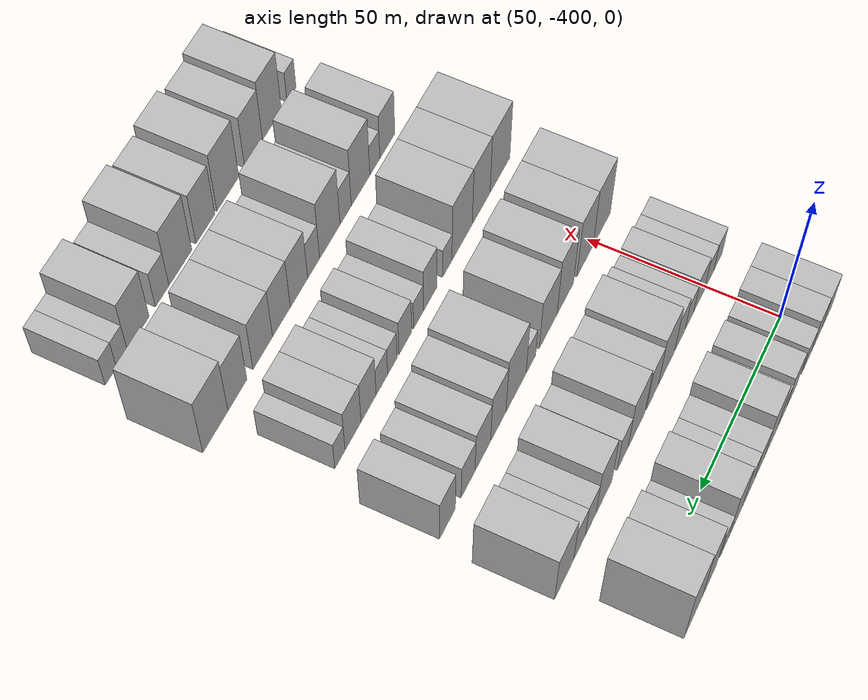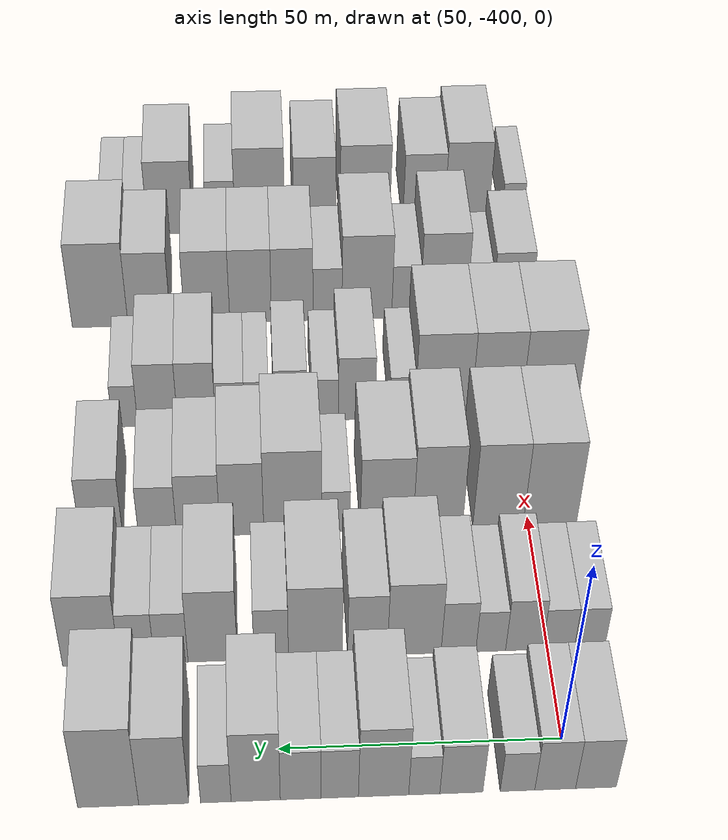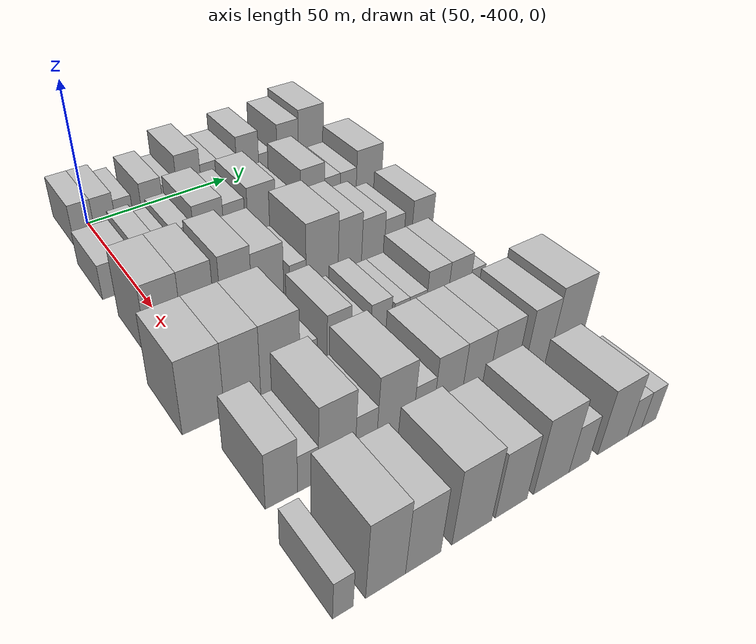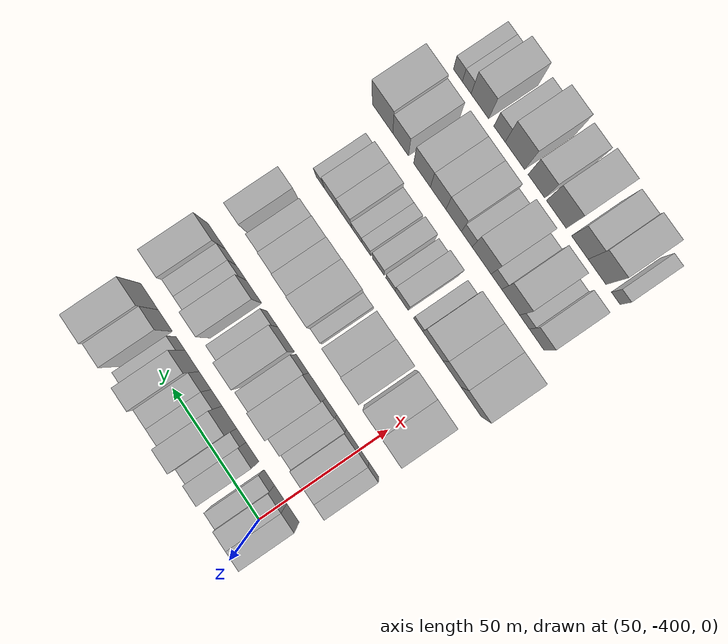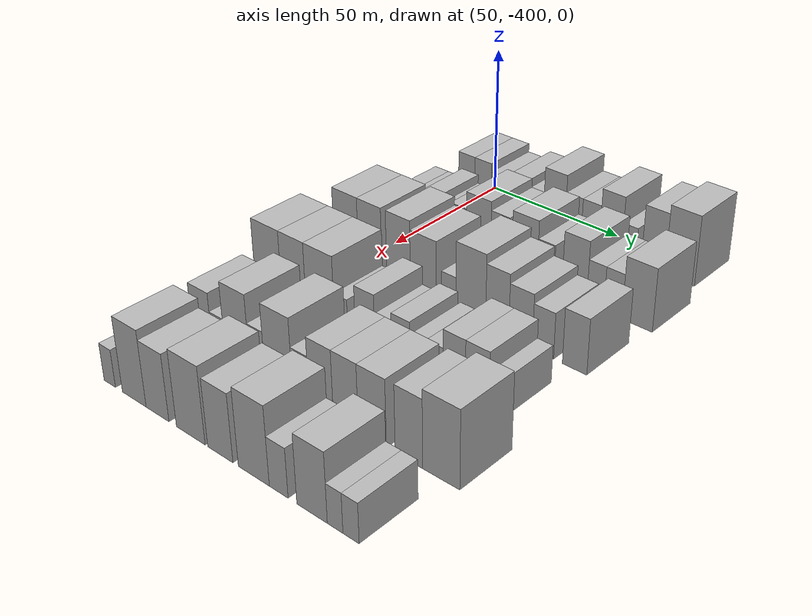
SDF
<sdf version="1.6">
 <world name="default">
  <model name="building_13">
   <static>1</static>
   <pose>50.0000 -404.5250 0 0.000000 0.000000 0.000000</pose>
   <link name="link">
    <pose>0 0 7.50 0 0 0</pose>
    <collision name="collision"><geometry><box><size>20.0000 7.0770 15.0000</size></box></geometry></collision>
    <visual name="visual">
     <cast_shadows>0</cast_shadows>
     <geometry><box><size>20.0000 7.0770 15.0000</size></box></geometry>
     <material>
      <script>
       <uri>model://HANNAS_wall/materials/scripts</uri>
       <uri>model://HANNAS_wall/materials/textures</uri>
       <name>vrc/HANNAS_wall</name>
      </script>
     </material>
    </visual>
   </link>
  </model>
  <model name="building_14">
   <static>1</static>
   <pose>50.0000 -397.4608 0 0.000000 0.000000 0.000000</pose>
   <link name="link">
    <pose>0 0 7.50 0 0 0</pose>
    <collision name="collision"><geometry><box><size>20.0000 7.0516 15.0000</size></box></geometry></collision>
    <visual name="visual">
     <cast_shadows>0</cast_shadows>
     <geometry><box><size>20.0000 7.0516 15.0000</size></box></geometry>
     <material>
      <script>
       <uri>model://HANNAS_wall/materials/scripts</uri>
       <uri>model://HANNAS_wall/materials/textures</uri>
       <name>vrc/HANNAS_wall</name>
      </script>
     </material>
    </visual>
   </link>
  </model>
  <model name="building_15">
   <static>1</static>
   <pose>50.0000 -390.9420 0 0.000000 0.000000 0.000000</pose>
   <link name="link">
    <pose>0 0 6.00 0 0 0</pose>
    <collision name="collision"><geometry><box><size>20.0000 5.9859 12.0000</size></box></geometry></collision>
    <visual name="visual">
     <cast_shadows>0</cast_shadows>
     <geometry><box><size>20.0000 5.9859 12.0000</size></box></geometry>
     <material>
      <script>
       <uri>model://HANNAS_wall/materials/scripts</uri>
       <uri>model://HANNAS_wall/materials/textures</uri>
       <name>vrc/HANNAS_wall</name>
      </script>
     </material>
    </visual>
   </link>
  </model>
  <model name="building_16">
   <static>1</static>
   <pose>50.0000 -381.2333 0 0.000000 0.000000 0.000000</pose>
   <link name="link">
    <pose>0 0 7.50 0 0 0</pose>
    <collision name="collision"><geometry><box><size>20.0000 7.4315 15.0000</size></box></geometry></collision>
    <visual name="visual">
     <cast_shadows>0</cast_shadows>
     <geometry><box><size>20.0000 7.4315 15.0000</size></box></geometry>
     <material>
      <script>
       <uri>model://HANNAS_wall/materials/scripts</uri>
       <uri>model://HANNAS_wall/materials/textures</uri>
       <name>vrc/HANNAS_wall</name>
      </script>
     </material>
    </visual>
   </link>
  </model>
  <model name="building_17">
   <static>1</static>
   <pose>50.0000 -374.8296 0 0.000000 0.000000 0.000000</pose>
   <link name="link">
    <pose>0 0 6.00 0 0 0</pose>
    <collision name="collision"><geometry><box><size>20.0000 5.3757 12.0000</size></box></geometry></collision>
    <visual name="visual">
     <cast_shadows>0</cast_shadows>
     <geometry><box><size>20.0000 5.3757 12.0000</size></box></geometry>
     <material>
      <script>
       <uri>model://HANNAS_wall/materials/scripts</uri>
       <uri>model://HANNAS_wall/materials/textures</uri>
       <name>vrc/HANNAS_wall</name>
      </script>
     </material>
    </visual>
   </link>
  </model>
  <model name="building_18">
   <static>1</static>
   <pose>50.0000 -367.8157 0 0.000000 0.000000 0.000000</pose>
   <link name="link">
    <pose>0 0 10.50 0 0 0</pose>
    <collision name="collision"><geometry><box><size>20.0000 8.6522 21.0000</size></box></geometry></collision>
    <visual name="visual">
     <cast_shadows>0</cast_shadows>
     <geometry><box><size>20.0000 8.6522 21.0000</size></box></geometry>
     <material>
      <script>
       <uri>model://HANNAS_wall/materials/scripts</uri>
       <uri>model://HANNAS_wall/materials/textures</uri>
       <name>vrc/HANNAS_wall</name>
      </script>
     </material>
    </visual>
   </link>
  </model>
  <model name="building_19">
   <static>1</static>
   <pose>50.0000 -360.2874 0 0.000000 0.000000 0.000000</pose>
   <link name="link">
    <pose>0 0 7.50 0 0 0</pose>
    <collision name="collision"><geometry><box><size>20.0000 6.4044 15.0000</size></box></geometry></collision>
    <visual name="visual">
     <cast_shadows>0</cast_shadows>
     <geometry><box><size>20.0000 6.4044 15.0000</size></box></geometry>
     <material>
      <script>
       <uri>model://HANNAS_wall/materials/scripts</uri>
       <uri>model://HANNAS_wall/materials/textures</uri>
       <name>vrc/HANNAS_wall</name>
      </script>
     </material>
    </visual>
   </link>
  </model>
  <model name="building_20">
   <static>1</static>
   <pose>50.0000 -353.5778 0 0.000000 0.000000 0.000000</pose>
   <link name="link">
    <pose>0 0 7.50 0 0 0</pose>
    <collision name="collision"><geometry><box><size>20.0000 7.0149 15.0000</size></box></geometry></collision>
    <visual name="visual">
     <cast_shadows>0</cast_shadows>
     <geometry><box><size>20.0000 7.0149 15.0000</size></box></geometry>
     <material>
      <script>
       <uri>model://HANNAS_wall/materials/scripts</uri>
       <uri>model://HANNAS_wall/materials/textures</uri>
       <name>vrc/HANNAS_wall</name>
      </script>
     </material>
    </visual>
   </link>
  </model>
  <model name="building_21">
   <static>1</static>
   <pose>50.0000 -345.8597 0 0.000000 0.000000 0.000000</pose>
   <link name="link">
    <pose>0 0 10.50 0 0 0</pose>
    <collision name="collision"><geometry><box><size>20.0000 8.4212 21.0000</size></box></geometry></collision>
    <visual name="visual">
     <cast_shadows>0</cast_shadows>
     <geometry><box><size>20.0000 8.4212 21.0000</size></box></geometry>
     <material>
      <script>
       <uri>model://HANNAS_wall/materials/scripts</uri>
       <uri>model://HANNAS_wall/materials/textures</uri>
       <name>vrc/HANNAS_wall</name>
      </script>
     </material>
    </visual>
   </link>
  </model>
  <model name="building_22">
   <static>1</static>
   <pose>50.0000 -339.0288 0 0.000000 0.000000 0.000000</pose>
   <link name="link">
    <pose>0 0 6.00 0 0 0</pose>
    <collision name="collision"><geometry><box><size>20.0000 5.2406 12.0000</size></box></geometry></collision>
    <visual name="visual">
     <cast_shadows>0</cast_shadows>
     <geometry><box><size>20.0000 5.2406 12.0000</size></box></geometry>
     <material>
      <script>
       <uri>model://HANNAS_wall/materials/scripts</uri>
       <uri>model://HANNAS_wall/materials/textures</uri>
       <name>vrc/HANNAS_wall</name>
      </script>
     </material>
    </visual>
   </link>
  </model>
  <model name="building_23">
   <static>1</static>
   <pose>50.0000 -330.1326 0 0.000000 0.000000 0.000000</pose>
   <link name="link">
    <pose>0 0 10.50 0 0 0</pose>
    <collision name="collision"><geometry><box><size>20.0000 8.5520 21.0000</size></box></geometry></collision>
    <visual name="visual">
     <cast_shadows>0</cast_shadows>
     <geometry><box><size>20.0000 8.5520 21.0000</size></box></geometry>
     <material>
      <script>
       <uri>model://HANNAS_wall/materials/scripts</uri>
       <uri>model://HANNAS_wall/materials/textures</uri>
       <name>vrc/HANNAS_wall</name>
      </script>
     </material>
    </visual>
   </link>
  </model>
  <model name="building_24">
   <static>1</static>
   <pose>50.0000 -320.6295 0 0.000000 0.000000 0.000000</pose>
   <link name="link">
    <pose>0 0 12.00 0 0 0</pose>
    <collision name="collision"><geometry><box><size>20.0000 10.4542 24.0000</size></box></geometry></collision>
    <visual name="visual">
     <cast_shadows>0</cast_shadows>
     <geometry><box><size>20.0000 10.4542 24.0000</size></box></geometry>
     <material>
      <script>
       <uri>model://HANNAS_wall/materials/scripts</uri>
       <uri>model://HANNAS_wall/materials/textures</uri>
       <name>vrc/HANNAS_wall</name>
      </script>
     </material>
    </visual>
   </link>
  </model>
  <model name="building_124">
   <static>1</static>
   <pose>79.0000 -407.6472 0 0.000000 0.000000 0.000000</pose>
   <link name="link">
    <pose>0 0 6.00 0 0 0</pose>
    <collision name="collision"><geometry><box><size>20.0000 5.5994 12.0000</size></box></geometry></collision>
    <visual name="visual">
     <cast_shadows>0</cast_shadows>
     <geometry><box><size>20.0000 5.5994 12.0000</size></box></geometry>
     <material>
      <script>
       <uri>model://HANNAS_wall/materials/scripts</uri>
       <uri>model://HANNAS_wall/materials/textures</uri>
       <name>vrc/HANNAS_wall</name>
      </script>
     </material>
    </visual>
   </link>
  </model>
  <model name="building_125">
   <static>1</static>
   <pose>79.0000 -401.9061 0 0.000000 0.000000 0.000000</pose>
   <link name="link">
    <pose>0 0 6.00 0 0 0</pose>
    <collision name="collision"><geometry><box><size>20.0000 5.8829 12.0000</size></box></geometry></collision>
    <visual name="visual">
     <cast_shadows>0</cast_shadows>
     <geometry><box><size>20.0000 5.8829 12.0000</size></box></geometry>
     <material>
      <script>
       <uri>model://HANNAS_wall/materials/scripts</uri>
       <uri>model://HANNAS_wall/materials/textures</uri>
       <name>vrc/HANNAS_wall</name>
      </script>
     </material>
    </visual>
   </link>
  </model>
  <model name="building_126">
   <static>1</static>
   <pose>79.0000 -395.5733 0 0.000000 0.000000 0.000000</pose>
   <link name="link">
    <pose>0 0 7.50 0 0 0</pose>
    <collision name="collision"><geometry><box><size>20.0000 6.7826 15.0000</size></box></geometry></collision>
    <visual name="visual">
     <cast_shadows>0</cast_shadows>
     <geometry><box><size>20.0000 6.7826 15.0000</size></box></geometry>
     <material>
      <script>
       <uri>model://HANNAS_wall/materials/scripts</uri>
       <uri>model://HANNAS_wall/materials/textures</uri>
       <name>vrc/HANNAS_wall</name>
      </script>
     </material>
    </visual>
   </link>
  </model>
  <model name="building_127">
   <static>1</static>
   <pose>79.0000 -389.4419 0 0.000000 0.000000 0.000000</pose>
   <link name="link">
    <pose>0 0 6.00 0 0 0</pose>
    <collision name="collision"><geometry><box><size>20.0000 5.4803 12.0000</size></box></geometry></collision>
    <visual name="visual">
     <cast_shadows>0</cast_shadows>
     <geometry><box><size>20.0000 5.4803 12.0000</size></box></geometry>
     <material>
      <script>
       <uri>model://HANNAS_wall/materials/scripts</uri>
       <uri>model://HANNAS_wall/materials/textures</uri>
       <name>vrc/HANNAS_wall</name>
      </script>
     </material>
    </visual>
   </link>
  </model>
  <model name="building_128">
   <static>1</static>
   <pose>79.0000 -383.5154 0 0.000000 0.000000 0.000000</pose>
   <link name="link">
    <pose>0 0 7.50 0 0 0</pose>
    <collision name="collision"><geometry><box><size>20.0000 6.3727 15.0000</size></box></geometry></collision>
    <visual name="visual">
     <cast_shadows>0</cast_shadows>
     <geometry><box><size>20.0000 6.3727 15.0000</size></box></geometry>
     <material>
      <script>
       <uri>model://HANNAS_wall/materials/scripts</uri>
       <uri>model://HANNAS_wall/materials/textures</uri>
       <name>vrc/HANNAS_wall</name>
      </script>
     </material>
    </visual>
   </link>
  </model>
  <model name="building_129">
   <static>1</static>
   <pose>79.0000 -375.3971 0 0.000000 0.000000 0.000000</pose>
   <link name="link">
    <pose>0 0 10.50 0 0 0</pose>
    <collision name="collision"><geometry><box><size>20.0000 9.8639 21.0000</size></box></geometry></collision>
    <visual name="visual">
     <cast_shadows>0</cast_shadows>
     <geometry><box><size>20.0000 9.8639 21.0000</size></box></geometry>
     <material>
      <script>
       <uri>model://HANNAS_wall/materials/scripts</uri>
       <uri>model://HANNAS_wall/materials/textures</uri>
       <name>vrc/HANNAS_wall</name>
      </script>
     </material>
    </visual>
   </link>
  </model>
  <model name="building_130">
   <static>1</static>
   <pose>79.0000 -366.8414 0 0.000000 0.000000 0.000000</pose>
   <link name="link">
    <pose>0 0 9.00 0 0 0</pose>
    <collision name="collision"><geometry><box><size>20.0000 7.2473 18.0000</size></box></geometry></collision>
    <visual name="visual">
     <cast_shadows>0</cast_shadows>
     <geometry><box><size>20.0000 7.2473 18.0000</size></box></geometry>
     <material>
      <script>
       <uri>model://HANNAS_wall/materials/scripts</uri>
       <uri>model://HANNAS_wall/materials/textures</uri>
       <name>vrc/HANNAS_wall</name>
      </script>
     </material>
    </visual>
   </link>
  </model>
  <model name="building_131">
   <static>1</static>
   <pose>79.0000 -357.3132 0 0.000000 0.000000 0.000000</pose>
   <link name="link">
    <pose>0 0 10.50 0 0 0</pose>
    <collision name="collision"><geometry><box><size>20.0000 9.8092 21.0000</size></box></geometry></collision>
    <visual name="visual">
     <cast_shadows>0</cast_shadows>
     <geometry><box><size>20.0000 9.8092 21.0000</size></box></geometry>
     <material>
      <script>
       <uri>model://HANNAS_wall/materials/scripts</uri>
       <uri>model://HANNAS_wall/materials/textures</uri>
       <name>vrc/HANNAS_wall</name>
      </script>
     </material>
    </visual>
   </link>
  </model>
  <model name="building_132">
   <static>1</static>
   <pose>79.0000 -349.2855 0 0.000000 0.000000 0.000000</pose>
   <link name="link">
    <pose>0 0 7.50 0 0 0</pose>
    <collision name="collision"><geometry><box><size>20.0000 6.2462 15.0000</size></box></geometry></collision>
    <visual name="visual">
     <cast_shadows>0</cast_shadows>
     <geometry><box><size>20.0000 6.2462 15.0000</size></box></geometry>
     <material>
      <script>
       <uri>model://HANNAS_wall/materials/scripts</uri>
       <uri>model://HANNAS_wall/materials/textures</uri>
       <name>vrc/HANNAS_wall</name>
      </script>
     </material>
    </visual>
   </link>
  </model>
  <model name="building_133">
   <static>1</static>
   <pose>79.0000 -338.6441 0 0.000000 0.000000 0.000000</pose>
   <link name="link">
    <pose>0 0 10.50 0 0 0</pose>
    <collision name="collision"><geometry><box><size>20.0000 9.0366 21.0000</size></box></geometry></collision>
    <visual name="visual">
     <cast_shadows>0</cast_shadows>
     <geometry><box><size>20.0000 9.0366 21.0000</size></box></geometry>
     <material>
      <script>
       <uri>model://HANNAS_wall/materials/scripts</uri>
       <uri>model://HANNAS_wall/materials/textures</uri>
       <name>vrc/HANNAS_wall</name>
      </script>
     </material>
    </visual>
   </link>
  </model>
  <model name="building_134">
   <static>1</static>
   <pose>79.0000 -331.0800 0 0.000000 0.000000 0.000000</pose>
   <link name="link">
    <pose>0 0 7.50 0 0 0</pose>
    <collision name="collision"><geometry><box><size>20.0000 6.0914 15.0000</size></box></geometry></collision>
    <visual name="visual">
     <cast_shadows>0</cast_shadows>
     <geometry><box><size>20.0000 6.0914 15.0000</size></box></geometry>
     <material>
      <script>
       <uri>model://HANNAS_wall/materials/scripts</uri>
       <uri>model://HANNAS_wall/materials/textures</uri>
       <name>vrc/HANNAS_wall</name>
      </script>
     </material>
    </visual>
   </link>
  </model>
  <model name="building_135">
   <static>1</static>
   <pose>79.0000 -324.8560 0 0.000000 0.000000 0.000000</pose>
   <link name="link">
    <pose>0 0 7.50 0 0 0</pose>
    <collision name="collision"><geometry><box><size>20.0000 6.3568 15.0000</size></box></geometry></collision>
    <visual name="visual">
     <cast_shadows>0</cast_shadows>
     <geometry><box><size>20.0000 6.3568 15.0000</size></box></geometry>
     <material>
      <script>
       <uri>model://HANNAS_wall/materials/scripts</uri>
       <uri>model://HANNAS_wall/materials/textures</uri>
       <name>vrc/HANNAS_wall</name>
      </script>
     </material>
    </visual>
   </link>
  </model>
  <model name="building_136">
   <static>1</static>
   <pose>79.0000 -316.5158 0 0.000000 0.000000 0.000000</pose>
   <link name="link">
    <pose>0 0 10.50 0 0 0</pose>
    <collision name="collision"><geometry><box><size>20.0000 10.3236 21.0000</size></box></geometry></collision>
    <visual name="visual">
     <cast_shadows>0</cast_shadows>
     <geometry><box><size>20.0000 10.3236 21.0000</size></box></geometry>
     <material>
      <script>
       <uri>model://HANNAS_wall/materials/scripts</uri>
       <uri>model://HANNAS_wall/materials/textures</uri>
       <name>vrc/HANNAS_wall</name>
      </script>
     </material>
    </visual>
   </link>
  </model>
  <model name="building_243">
   <static>1</static>
   <pose>108.0000 -404.1039 0 0.000000 0.000000 0.000000</pose>
   <link name="link">
    <pose>0 0 12.00 0 0 0</pose>
    <collision name="collision"><geometry><box><size>20.0000 10.4382 24.0000</size></box></geometry></collision>
    <visual name="visual">
     <cast_shadows>0</cast_shadows>
     <geometry><box><size>20.0000 10.4382 24.0000</size></box></geometry>
     <material>
      <script>
       <uri>model://HANNAS_wall/materials/scripts</uri>
       <uri>model://HANNAS_wall/materials/textures</uri>
       <name>vrc/HANNAS_wall</name>
      </script>
     </material>
    </visual>
   </link>
  </model>
  <model name="building_244">
   <static>1</static>
   <pose>108.0000 -393.9893 0 0.000000 0.000000 0.000000</pose>
   <link name="link">
    <pose>0 0 12.00 0 0 0</pose>
    <collision name="collision"><geometry><box><size>20.0000 9.7911 24.0000</size></box></geometry></collision>
    <visual name="visual">
     <cast_shadows>0</cast_shadows>
     <geometry><box><size>20.0000 9.7911 24.0000</size></box></geometry>
     <material>
      <script>
       <uri>model://HANNAS_wall/materials/scripts</uri>
       <uri>model://HANNAS_wall/materials/textures</uri>
       <name>vrc/HANNAS_wall</name>
      </script>
     </material>
    </visual>
   </link>
  </model>
  <model name="building_245">
   <static>1</static>
   <pose>108.0000 -382.2845 0 0.000000 0.000000 0.000000</pose>
   <link name="link">
    <pose>0 0 12.00 0 0 0</pose>
    <collision name="collision"><geometry><box><size>20.0000 9.6186 24.0000</size></box></geometry></collision>
    <visual name="visual">
     <cast_shadows>0</cast_shadows>
     <geometry><box><size>20.0000 9.6186 24.0000</size></box></geometry>
     <material>
      <script>
       <uri>model://HANNAS_wall/materials/scripts</uri>
       <uri>model://HANNAS_wall/materials/textures</uri>
       <name>vrc/HANNAS_wall</name>
      </script>
     </material>
    </visual>
   </link>
  </model>
  <model name="building_246">
   <static>1</static>
   <pose>108.0000 -372.3496 0 0.000000 0.000000 0.000000</pose>
   <link name="link">
    <pose>0 0 10.50 0 0 0</pose>
    <collision name="collision"><geometry><box><size>20.0000 10.2512 21.0000</size></box></geometry></collision>
    <visual name="visual">
     <cast_shadows>0</cast_shadows>
     <geometry><box><size>20.0000 10.2512 21.0000</size></box></geometry>
     <material>
      <script>
       <uri>model://HANNAS_wall/materials/scripts</uri>
       <uri>model://HANNAS_wall/materials/textures</uri>
       <name>vrc/HANNAS_wall</name>
      </script>
     </material>
    </visual>
   </link>
  </model>
  <model name="building_247">
   <static>1</static>
   <pose>108.0000 -362.4844 0 0.000000 0.000000 0.000000</pose>
   <link name="link">
    <pose>0 0 6.00 0 0 0</pose>
    <collision name="collision"><geometry><box><size>20.0000 5.4791 12.0000</size></box></geometry></collision>
    <visual name="visual">
     <cast_shadows>0</cast_shadows>
     <geometry><box><size>20.0000 5.4791 12.0000</size></box></geometry>
     <material>
      <script>
       <uri>model://HANNAS_wall/materials/scripts</uri>
       <uri>model://HANNAS_wall/materials/textures</uri>
       <name>vrc/HANNAS_wall</name>
      </script>
     </material>
    </visual>
   </link>
  </model>
  <model name="building_248">
   <static>1</static>
   <pose>108.0000 -354.1756 0 0.000000 0.000000 0.000000</pose>
   <link name="link">
    <pose>0 0 12.00 0 0 0</pose>
    <collision name="collision"><geometry><box><size>20.0000 11.1385 24.0000</size></box></geometry></collision>
    <visual name="visual">
     <cast_shadows>0</cast_shadows>
     <geometry><box><size>20.0000 11.1385 24.0000</size></box></geometry>
     <material>
      <script>
       <uri>model://HANNAS_wall/materials/scripts</uri>
       <uri>model://HANNAS_wall/materials/textures</uri>
       <name>vrc/HANNAS_wall</name>
      </script>
     </material>
    </visual>
   </link>
  </model>
  <model name="building_249">
   <static>1</static>
   <pose>108.0000 -344.3941 0 0.000000 0.000000 0.000000</pose>
   <link name="link">
    <pose>0 0 10.50 0 0 0</pose>
    <collision name="collision"><geometry><box><size>20.0000 8.4247 21.0000</size></box></geometry></collision>
    <visual name="visual">
     <cast_shadows>0</cast_shadows>
     <geometry><box><size>20.0000 8.4247 21.0000</size></box></geometry>
     <material>
      <script>
       <uri>model://HANNAS_wall/materials/scripts</uri>
       <uri>model://HANNAS_wall/materials/textures</uri>
       <name>vrc/HANNAS_wall</name>
      </script>
     </material>
    </visual>
   </link>
  </model>
  <model name="building_250">
   <static>1</static>
   <pose>108.0000 -335.9881 0 0.000000 0.000000 0.000000</pose>
   <link name="link">
    <pose>0 0 9.00 0 0 0</pose>
    <collision name="collision"><geometry><box><size>20.0000 8.3873 18.0000</size></box></geometry></collision>
    <visual name="visual">
     <cast_shadows>0</cast_shadows>
     <geometry><box><size>20.0000 8.3873 18.0000</size></box></geometry>
     <material>
      <script>
       <uri>model://HANNAS_wall/materials/scripts</uri>
       <uri>model://HANNAS_wall/materials/textures</uri>
       <name>vrc/HANNAS_wall</name>
      </script>
     </material>
    </visual>
   </link>
  </model>
  <model name="building_251">
   <static>1</static>
   <pose>108.0000 -328.1311 0 0.000000 0.000000 0.000000</pose>
   <link name="link">
    <pose>0 0 7.50 0 0 0</pose>
    <collision name="collision"><geometry><box><size>20.0000 7.3266 15.0000</size></box></geometry></collision>
    <visual name="visual">
     <cast_shadows>0</cast_shadows>
     <geometry><box><size>20.0000 7.3266 15.0000</size></box></geometry>
     <material>
      <script>
       <uri>model://HANNAS_wall/materials/scripts</uri>
       <uri>model://HANNAS_wall/materials/textures</uri>
       <name>vrc/HANNAS_wall</name>
      </script>
     </material>
    </visual>
   </link>
  </model>
  <model name="building_252">
   <static>1</static>
   <pose>108.0000 -317.3783 0 0.000000 0.000000 0.000000</pose>
   <link name="link">
    <pose>0 0 9.00 0 0 0</pose>
    <collision name="collision"><geometry><box><size>20.0000 8.1790 18.0000</size></box></geometry></collision>
    <visual name="visual">
     <cast_shadows>0</cast_shadows>
     <geometry><box><size>20.0000 8.1790 18.0000</size></box></geometry>
     <material>
      <script>
       <uri>model://HANNAS_wall/materials/scripts</uri>
       <uri>model://HANNAS_wall/materials/textures</uri>
       <name>vrc/HANNAS_wall</name>
      </script>
     </material>
    </visual>
   </link>
  </model>
  <model name="building_352">
   <static>1</static>
   <pose>137.0000 -407.6745 0 0.000000 0.000000 0.000000</pose>
   <link name="link">
    <pose>0 0 12.00 0 0 0</pose>
    <collision name="collision"><geometry><box><size>20.0000 11.4864 24.0000</size></box></geometry></collision>
    <visual name="visual">
     <cast_shadows>0</cast_shadows>
     <geometry><box><size>20.0000 11.4864 24.0000</size></box></geometry>
     <material>
      <script>
       <uri>model://HANNAS_wall/materials/scripts</uri>
       <uri>model://HANNAS_wall/materials/textures</uri>
       <name>vrc/HANNAS_wall</name>
      </script>
     </material>
    </visual>
   </link>
  </model>
  <model name="building_353">
   <static>1</static>
   <pose>137.0000 -396.7987 0 0.000000 0.000000 0.000000</pose>
   <link name="link">
    <pose>0 0 12.00 0 0 0</pose>
    <collision name="collision"><geometry><box><size>20.0000 10.2651 24.0000</size></box></geometry></collision>
    <visual name="visual">
     <cast_shadows>0</cast_shadows>
     <geometry><box><size>20.0000 10.2651 24.0000</size></box></geometry>
     <material>
      <script>
       <uri>model://HANNAS_wall/materials/scripts</uri>
       <uri>model://HANNAS_wall/materials/textures</uri>
       <name>vrc/HANNAS_wall</name>
      </script>
     </material>
    </visual>
   </link>
  </model>
  <model name="building_354">
   <static>1</static>
   <pose>137.0000 -385.9045 0 0.000000 0.000000 0.000000</pose>
   <link name="link">
    <pose>0 0 12.00 0 0 0</pose>
    <collision name="collision"><geometry><box><size>20.0000 11.5234 24.0000</size></box></geometry></collision>
    <visual name="visual">
     <cast_shadows>0</cast_shadows>
     <geometry><box><size>20.0000 11.5234 24.0000</size></box></geometry>
     <material>
      <script>
       <uri>model://HANNAS_wall/materials/scripts</uri>
       <uri>model://HANNAS_wall/materials/textures</uri>
       <name>vrc/HANNAS_wall</name>
      </script>
     </material>
    </visual>
   </link>
  </model>
  <model name="building_355">
   <static>1</static>
   <pose>137.0000 -377.5384 0 0.000000 0.000000 0.000000</pose>
   <link name="link">
    <pose>0 0 6.00 0 0 0</pose>
    <collision name="collision"><geometry><box><size>20.0000 5.2086 12.0000</size></box></geometry></collision>
    <visual name="visual">
     <cast_shadows>0</cast_shadows>
     <geometry><box><size>20.0000 5.2086 12.0000</size></box></geometry>
     <material>
      <script>
       <uri>model://HANNAS_wall/materials/scripts</uri>
       <uri>model://HANNAS_wall/materials/textures</uri>
       <name>vrc/HANNAS_wall</name>
      </script>
     </material>
    </visual>
   </link>
  </model>
  <model name="building_356">
   <static>1</static>
   <pose>137.0000 -368.1940 0 0.000000 0.000000 0.000000</pose>
   <link name="link">
    <pose>0 0 9.00 0 0 0</pose>
    <collision name="collision"><geometry><box><size>20.0000 7.4802 18.0000</size></box></geometry></collision>
    <visual name="visual">
     <cast_shadows>0</cast_shadows>
     <geometry><box><size>20.0000 7.4802 18.0000</size></box></geometry>
     <material>
      <script>
       <uri>model://HANNAS_wall/materials/scripts</uri>
       <uri>model://HANNAS_wall/materials/textures</uri>
       <name>vrc/HANNAS_wall</name>
      </script>
     </material>
    </visual>
   </link>
  </model>
  <model name="building_357">
   <static>1</static>
   <pose>137.0000 -361.7724 0 0.000000 0.000000 0.000000</pose>
   <link name="link">
    <pose>0 0 6.00 0 0 0</pose>
    <collision name="collision"><geometry><box><size>20.0000 5.3631 12.0000</size></box></geometry></collision>
    <visual name="visual">
     <cast_shadows>0</cast_shadows>
     <geometry><box><size>20.0000 5.3631 12.0000</size></box></geometry>
     <material>
      <script>
       <uri>model://HANNAS_wall/materials/scripts</uri>
       <uri>model://HANNAS_wall/materials/textures</uri>
       <name>vrc/HANNAS_wall</name>
      </script>
     </material>
    </visual>
   </link>
  </model>
  <model name="building_358">
   <static>1</static>
   <pose>137.0000 -354.7178 0 0.000000 0.000000 0.000000</pose>
   <link name="link">
    <pose>0 0 7.50 0 0 0</pose>
    <collision name="collision"><geometry><box><size>20.0000 6.7460 15.0000</size></box></geometry></collision>
    <visual name="visual">
     <cast_shadows>0</cast_shadows>
     <geometry><box><size>20.0000 6.7460 15.0000</size></box></geometry>
     <material>
      <script>
       <uri>model://HANNAS_wall/materials/scripts</uri>
       <uri>model://HANNAS_wall/materials/textures</uri>
       <name>vrc/HANNAS_wall</name>
      </script>
     </material>
    </visual>
   </link>
  </model>
  <model name="building_359">
   <static>1</static>
   <pose>137.0000 -347.8569 0 0.000000 0.000000 0.000000</pose>
   <link name="link">
    <pose>0 0 6.00 0 0 0</pose>
    <collision name="collision"><geometry><box><size>20.0000 4.9759 12.0000</size></box></geometry></collision>
    <visual name="visual">
     <cast_shadows>0</cast_shadows>
     <geometry><box><size>20.0000 4.9759 12.0000</size></box></geometry>
     <material>
      <script>
       <uri>model://HANNAS_wall/materials/scripts</uri>
       <uri>model://HANNAS_wall/materials/textures</uri>
       <name>vrc/HANNAS_wall</name>
      </script>
     </material>
    </visual>
   </link>
  </model>
  <model name="building_360">
   <static>1</static>
   <pose>137.0000 -342.3907 0 0.000000 0.000000 0.000000</pose>
   <link name="link">
    <pose>0 0 6.00 0 0 0</pose>
    <collision name="collision"><geometry><box><size>20.0000 5.9565 12.0000</size></box></geometry></collision>
    <visual name="visual">
     <cast_shadows>0</cast_shadows>
     <geometry><box><size>20.0000 5.9565 12.0000</size></box></geometry>
     <material>
      <script>
       <uri>model://HANNAS_wall/materials/scripts</uri>
       <uri>model://HANNAS_wall/materials/textures</uri>
       <name>vrc/HANNAS_wall</name>
      </script>
     </material>
    </visual>
   </link>
  </model>
  <model name="building_361">
   <static>1</static>
   <pose>137.0000 -335.5561 0 0.000000 0.000000 0.000000</pose>
   <link name="link">
    <pose>0 0 9.00 0 0 0</pose>
    <collision name="collision"><geometry><box><size>20.0000 7.7126 18.0000</size></box></geometry></collision>
    <visual name="visual">
     <cast_shadows>0</cast_shadows>
     <geometry><box><size>20.0000 7.7126 18.0000</size></box></geometry>
     <material>
      <script>
       <uri>model://HANNAS_wall/materials/scripts</uri>
       <uri>model://HANNAS_wall/materials/textures</uri>
       <name>vrc/HANNAS_wall</name>
      </script>
     </material>
    </visual>
   </link>
  </model>
  <model name="building_362">
   <static>1</static>
   <pose>137.0000 -327.6586 0 0.000000 0.000000 0.000000</pose>
   <link name="link">
    <pose>0 0 9.00 0 0 0</pose>
    <collision name="collision"><geometry><box><size>20.0000 8.0824 18.0000</size></box></geometry></collision>
    <visual name="visual">
     <cast_shadows>0</cast_shadows>
     <geometry><box><size>20.0000 8.0824 18.0000</size></box></geometry>
     <material>
      <script>
       <uri>model://HANNAS_wall/materials/scripts</uri>
       <uri>model://HANNAS_wall/materials/textures</uri>
       <name>vrc/HANNAS_wall</name>
      </script>
     </material>
    </visual>
   </link>
  </model>
  <model name="building_363">
   <static>1</static>
   <pose>137.0000 -321.0528 0 0.000000 0.000000 0.000000</pose>
   <link name="link">
    <pose>0 0 6.00 0 0 0</pose>
    <collision name="collision"><geometry><box><size>20.0000 5.1293 12.0000</size></box></geometry></collision>
    <visual name="visual">
     <cast_shadows>0</cast_shadows>
     <geometry><box><size>20.0000 5.1293 12.0000</size></box></geometry>
     <material>
      <script>
       <uri>model://HANNAS_wall/materials/scripts</uri>
       <uri>model://HANNAS_wall/materials/textures</uri>
       <name>vrc/HANNAS_wall</name>
      </script>
     </material>
    </visual>
   </link>
  </model>
  <model name="building_471">
   <static>1</static>
   <pose>166.0000 -403.2726 0 0.000000 0.000000 0.000000</pose>
   <link name="link">
    <pose>0 0 9.00 0 0 0</pose>
    <collision name="collision"><geometry><box><size>20.0000 8.3452 18.0000</size></box></geometry></collision>
    <visual name="visual">
     <cast_shadows>0</cast_shadows>
     <geometry><box><size>20.0000 8.3452 18.0000</size></box></geometry>
     <material>
      <script>
       <uri>model://HANNAS_wall/materials/scripts</uri>
       <uri>model://HANNAS_wall/materials/textures</uri>
       <name>vrc/HANNAS_wall</name>
      </script>
     </material>
    </visual>
   </link>
  </model>
  <model name="building_472">
   <static>1</static>
   <pose>166.0000 -396.3405 0 0.000000 0.000000 0.000000</pose>
   <link name="link">
    <pose>0 0 6.00 0 0 0</pose>
    <collision name="collision"><geometry><box><size>20.0000 5.5190 12.0000</size></box></geometry></collision>
    <visual name="visual">
     <cast_shadows>0</cast_shadows>
     <geometry><box><size>20.0000 5.5190 12.0000</size></box></geometry>
     <material>
      <script>
       <uri>model://HANNAS_wall/materials/scripts</uri>
       <uri>model://HANNAS_wall/materials/textures</uri>
       <name>vrc/HANNAS_wall</name>
      </script>
     </material>
    </visual>
   </link>
  </model>
  <model name="building_473">
   <static>1</static>
   <pose>166.0000 -388.5392 0 0.000000 0.000000 0.000000</pose>
   <link name="link">
    <pose>0 0 12.00 0 0 0</pose>
    <collision name="collision"><geometry><box><size>20.0000 10.0836 24.0000</size></box></geometry></collision>
    <visual name="visual">
     <cast_shadows>0</cast_shadows>
     <geometry><box><size>20.0000 10.0836 24.0000</size></box></geometry>
     <material>
      <script>
       <uri>model://HANNAS_wall/materials/scripts</uri>
       <uri>model://HANNAS_wall/materials/textures</uri>
       <name>vrc/HANNAS_wall</name>
      </script>
     </material>
    </visual>
   </link>
  </model>
  <model name="building_474">
   <static>1</static>
   <pose>166.0000 -380.4691 0 0.000000 0.000000 0.000000</pose>
   <link name="link">
    <pose>0 0 7.50 0 0 0</pose>
    <collision name="collision"><geometry><box><size>20.0000 6.0566 15.0000</size></box></geometry></collision>
    <visual name="visual">
     <cast_shadows>0</cast_shadows>
     <geometry><box><size>20.0000 6.0566 15.0000</size></box></geometry>
     <material>
      <script>
       <uri>model://HANNAS_wall/materials/scripts</uri>
       <uri>model://HANNAS_wall/materials/textures</uri>
       <name>vrc/HANNAS_wall</name>
      </script>
     </material>
    </visual>
   </link>
  </model>
  <model name="building_475">
   <static>1</static>
   <pose>166.0000 -372.0624 0 0.000000 0.000000 0.000000</pose>
   <link name="link">
    <pose>0 0 12.00 0 0 0</pose>
    <collision name="collision"><geometry><box><size>20.0000 10.7566 24.0000</size></box></geometry></collision>
    <visual name="visual">
     <cast_shadows>0</cast_shadows>
     <geometry><box><size>20.0000 10.7566 24.0000</size></box></geometry>
     <material>
      <script>
       <uri>model://HANNAS_wall/materials/scripts</uri>
       <uri>model://HANNAS_wall/materials/textures</uri>
       <name>vrc/HANNAS_wall</name>
      </script>
     </material>
    </visual>
   </link>
  </model>
  <model name="building_476">
   <static>1</static>
   <pose>166.0000 -363.5845 0 0.000000 0.000000 0.000000</pose>
   <link name="link">
    <pose>0 0 7.50 0 0 0</pose>
    <collision name="collision"><geometry><box><size>20.0000 6.1993 15.0000</size></box></geometry></collision>
    <visual name="visual">
     <cast_shadows>0</cast_shadows>
     <geometry><box><size>20.0000 6.1993 15.0000</size></box></geometry>
     <material>
      <script>
       <uri>model://HANNAS_wall/materials/scripts</uri>
       <uri>model://HANNAS_wall/materials/textures</uri>
       <name>vrc/HANNAS_wall</name>
      </script>
     </material>
    </visual>
   </link>
  </model>
  <model name="building_477">
   <static>1</static>
   <pose>166.0000 -356.0379 0 0.000000 0.000000 0.000000</pose>
   <link name="link">
    <pose>0 0 10.50 0 0 0</pose>
    <collision name="collision"><geometry><box><size>20.0000 8.8938 21.0000</size></box></geometry></collision>
    <visual name="visual">
     <cast_shadows>0</cast_shadows>
     <geometry><box><size>20.0000 8.8938 21.0000</size></box></geometry>
     <material>
      <script>
       <uri>model://HANNAS_wall/materials/scripts</uri>
       <uri>model://HANNAS_wall/materials/textures</uri>
       <name>vrc/HANNAS_wall</name>
      </script>
     </material>
    </visual>
   </link>
  </model>
  <model name="building_478">
   <static>1</static>
   <pose>166.0000 -347.1098 0 0.000000 0.000000 0.000000</pose>
   <link name="link">
    <pose>0 0 10.50 0 0 0</pose>
    <collision name="collision"><geometry><box><size>20.0000 8.9624 21.0000</size></box></geometry></collision>
    <visual name="visual">
     <cast_shadows>0</cast_shadows>
     <geometry><box><size>20.0000 8.9624 21.0000</size></box></geometry>
     <material>
      <script>
       <uri>model://HANNAS_wall/materials/scripts</uri>
       <uri>model://HANNAS_wall/materials/textures</uri>
       <name>vrc/HANNAS_wall</name>
      </script>
     </material>
    </visual>
   </link>
  </model>
  <model name="building_479">
   <static>1</static>
   <pose>166.0000 -337.7787 0 0.000000 0.000000 0.000000</pose>
   <link name="link">
    <pose>0 0 10.50 0 0 0</pose>
    <collision name="collision"><geometry><box><size>20.0000 9.6998 21.0000</size></box></geometry></collision>
    <visual name="visual">
     <cast_shadows>0</cast_shadows>
     <geometry><box><size>20.0000 9.6998 21.0000</size></box></geometry>
     <material>
      <script>
       <uri>model://HANNAS_wall/materials/scripts</uri>
       <uri>model://HANNAS_wall/materials/textures</uri>
       <name>vrc/HANNAS_wall</name>
      </script>
     </material>
    </visual>
   </link>
  </model>
  <model name="building_480">
   <static>1</static>
   <pose>166.0000 -325.3636 0 0.000000 0.000000 0.000000</pose>
   <link name="link">
    <pose>0 0 10.50 0 0 0</pose>
    <collision name="collision"><geometry><box><size>20.0000 9.1305 21.0000</size></box></geometry></collision>
    <visual name="visual">
     <cast_shadows>0</cast_shadows>
     <geometry><box><size>20.0000 9.1305 21.0000</size></box></geometry>
     <material>
      <script>
       <uri>model://HANNAS_wall/materials/scripts</uri>
       <uri>model://HANNAS_wall/materials/textures</uri>
       <name>vrc/HANNAS_wall</name>
      </script>
     </material>
    </visual>
   </link>
  </model>
  <model name="building_481">
   <static>1</static>
   <pose>166.0000 -314.8361 0 0.000000 0.000000 0.000000</pose>
   <link name="link">
    <pose>0 0 12.00 0 0 0</pose>
    <collision name="collision"><geometry><box><size>20.0000 11.9245 24.0000</size></box></geometry></collision>
    <visual name="visual">
     <cast_shadows>0</cast_shadows>
     <geometry><box><size>20.0000 11.9245 24.0000</size></box></geometry>
     <material>
      <script>
       <uri>model://HANNAS_wall/materials/scripts</uri>
       <uri>model://HANNAS_wall/materials/textures</uri>
       <name>vrc/HANNAS_wall</name>
      </script>
     </material>
    </visual>
   </link>
  </model>
  <model name="building_585">
   <static>1</static>
   <pose>195.0000 -406.8453 0 0.000000 0.000000 0.000000</pose>
   <link name="link">
    <pose>0 0 6.00 0 0 0</pose>
    <collision name="collision"><geometry><box><size>20.0000 4.9252 12.0000</size></box></geometry></collision>
    <visual name="visual">
     <cast_shadows>0</cast_shadows>
     <geometry><box><size>20.0000 4.9252 12.0000</size></box></geometry>
     <material>
      <script>
       <uri>model://HANNAS_wall/materials/scripts</uri>
       <uri>model://HANNAS_wall/materials/textures</uri>
       <name>vrc/HANNAS_wall</name>
      </script>
     </material>
    </visual>
   </link>
  </model>
  <model name="building_586">
   <static>1</static>
   <pose>195.0000 -396.3690 0 0.000000 0.000000 0.000000</pose>
   <link name="link">
    <pose>0 0 12.00 0 0 0</pose>
    <collision name="collision"><geometry><box><size>20.0000 10.0273 24.0000</size></box></geometry></collision>
    <visual name="visual">
     <cast_shadows>0</cast_shadows>
     <geometry><box><size>20.0000 10.0273 24.0000</size></box></geometry>
     <material>
      <script>
       <uri>model://HANNAS_wall/materials/scripts</uri>
       <uri>model://HANNAS_wall/materials/textures</uri>
       <name>vrc/HANNAS_wall</name>
      </script>
     </material>
    </visual>
   </link>
  </model>
  <model name="building_587">
   <static>1</static>
   <pose>195.0000 -386.6839 0 0.000000 0.000000 0.000000</pose>
   <link name="link">
    <pose>0 0 10.50 0 0 0</pose>
    <collision name="collision"><geometry><box><size>20.0000 9.3431 21.0000</size></box></geometry></collision>
    <visual name="visual">
     <cast_shadows>0</cast_shadows>
     <geometry><box><size>20.0000 9.3431 21.0000</size></box></geometry>
     <material>
      <script>
       <uri>model://HANNAS_wall/materials/scripts</uri>
       <uri>model://HANNAS_wall/materials/textures</uri>
       <name>vrc/HANNAS_wall</name>
      </script>
     </material>
    </visual>
   </link>
  </model>
  <model name="building_588">
   <static>1</static>
   <pose>195.0000 -373.4006 0 0.000000 0.000000 0.000000</pose>
   <link name="link">
    <pose>0 0 12.00 0 0 0</pose>
    <collision name="collision"><geometry><box><size>20.0000 11.2234 24.0000</size></box></geometry></collision>
    <visual name="visual">
     <cast_shadows>0</cast_shadows>
     <geometry><box><size>20.0000 11.2234 24.0000</size></box></geometry>
     <material>
      <script>
       <uri>model://HANNAS_wall/materials/scripts</uri>
       <uri>model://HANNAS_wall/materials/textures</uri>
       <name>vrc/HANNAS_wall</name>
      </script>
     </material>
    </visual>
   </link>
  </model>
  <model name="building_589">
   <static>1</static>
   <pose>195.0000 -362.0510 0 0.000000 0.000000 0.000000</pose>
   <link name="link">
    <pose>0 0 10.50 0 0 0</pose>
    <collision name="collision"><geometry><box><size>20.0000 9.4759 21.0000</size></box></geometry></collision>
    <visual name="visual">
     <cast_shadows>0</cast_shadows>
     <geometry><box><size>20.0000 9.4759 21.0000</size></box></geometry>
     <material>
      <script>
       <uri>model://HANNAS_wall/materials/scripts</uri>
       <uri>model://HANNAS_wall/materials/textures</uri>
       <name>vrc/HANNAS_wall</name>
      </script>
     </material>
    </visual>
   </link>
  </model>
  <model name="building_590">
   <static>1</static>
   <pose>195.0000 -349.7395 0 0.000000 0.000000 0.000000</pose>
   <link name="link">
    <pose>0 0 12.00 0 0 0</pose>
    <collision name="collision"><geometry><box><size>20.0000 11.1472 24.0000</size></box></geometry></collision>
    <visual name="visual">
     <cast_shadows>0</cast_shadows>
     <geometry><box><size>20.0000 11.1472 24.0000</size></box></geometry>
     <material>
      <script>
       <uri>model://HANNAS_wall/materials/scripts</uri>
       <uri>model://HANNAS_wall/materials/textures</uri>
       <name>vrc/HANNAS_wall</name>
      </script>
     </material>
    </visual>
   </link>
  </model>
  <model name="building_591">
   <static>1</static>
   <pose>195.0000 -340.8984 0 0.000000 0.000000 0.000000</pose>
   <link name="link">
    <pose>0 0 7.50 0 0 0</pose>
    <collision name="collision"><geometry><box><size>20.0000 6.5348 15.0000</size></box></geometry></collision>
    <visual name="visual">
     <cast_shadows>0</cast_shadows>
     <geometry><box><size>20.0000 6.5348 15.0000</size></box></geometry>
     <material>
      <script>
       <uri>model://HANNAS_wall/materials/scripts</uri>
       <uri>model://HANNAS_wall/materials/textures</uri>
       <name>vrc/HANNAS_wall</name>
      </script>
     </material>
    </visual>
   </link>
  </model>
  <model name="building_592">
   <static>1</static>
   <pose>195.0000 -329.5326 0 0.000000 0.000000 0.000000</pose>
   <link name="link">
    <pose>0 0 10.50 0 0 0</pose>
    <collision name="collision"><geometry><box><size>20.0000 10.1969 21.0000</size></box></geometry></collision>
    <visual name="visual">
     <cast_shadows>0</cast_shadows>
     <geometry><box><size>20.0000 10.1969 21.0000</size></box></geometry>
     <material>
      <script>
       <uri>model://HANNAS_wall/materials/scripts</uri>
       <uri>model://HANNAS_wall/materials/textures</uri>
       <name>vrc/HANNAS_wall</name>
      </script>
     </material>
    </visual>
   </link>
  </model>
  <model name="building_593">
   <static>1</static>
   <pose>195.0000 -321.9028 0 0.000000 0.000000 0.000000</pose>
   <link name="link">
    <pose>0 0 6.00 0 0 0</pose>
    <collision name="collision"><geometry><box><size>20.0000 5.0625 12.0000</size></box></geometry></collision>
    <visual name="visual">
     <cast_shadows>0</cast_shadows>
     <geometry><box><size>20.0000 5.0625 12.0000</size></box></geometry>
     <material>
      <script>
       <uri>model://HANNAS_wall/materials/scripts</uri>
       <uri>model://HANNAS_wall/materials/textures</uri>
       <name>vrc/HANNAS_wall</name>
      </script>
     </material>
    </visual>
   </link>
  </model>
  <model name="building_594">
   <static>1</static>
   <pose>195.0000 -316.7875 0 0.000000 0.000000 0.000000</pose>
   <link name="link">
    <pose>0 0 6.00 0 0 0</pose>
    <collision name="collision"><geometry><box><size>20.0000 5.1682 12.0000</size></box></geometry></collision>
    <visual name="visual">
     <cast_shadows>0</cast_shadows>
     <geometry><box><size>20.0000 5.1682 12.0000</size></box></geometry>
     <material>
      <script>
       <uri>model://HANNAS_wall/materials/scripts</uri>
       <uri>model://HANNAS_wall/materials/textures</uri>
       <name>vrc/HANNAS_wall</name>
      </script>
     </material>
    </visual>
   </link>
  </model>
 </world>
</sdf>
